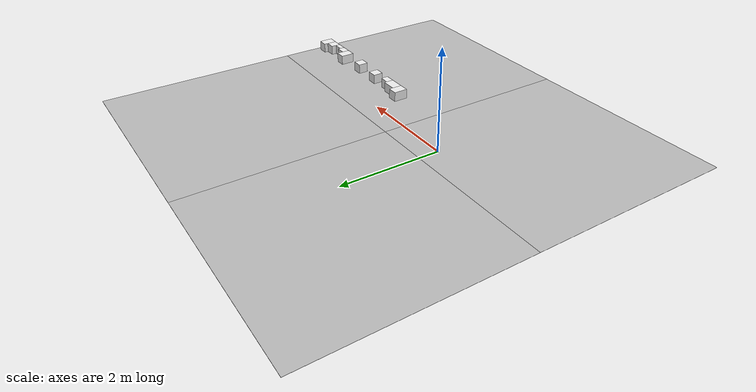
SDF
<sdf version="1.6">
 <world name="default">
  <model name="Tile/0-0">
   <static>1</static>
   <link name="link">
    <collision name="collision">
     <geometry><plane><normal>0 0 1</normal><size>4.096 4.096</size></plane></geometry>
     <surface><friction><ode><mu>100</mu><mu2>50</mu2></ode></friction></surface>
    </collision>
    <visual name="visual">
     <cast_shadows>0</cast_shadows>
     <geometry><plane><normal>0 0 1</normal><size>4.096 4.096</size></plane></geometry>
     <material>
      <script>
       <uri>file://materials/scripts</uri>
       <uri>file://materials/textures</uri>
       <name>Tile/aa44efc093d15b0d016b671cb8dad8b9b5925cd42bc6b331ef31decf4ba6863e</name>
      </script>
     </material>
    </visual>
   </link>
   <pose>-0.952 -1.6520000000000001 0 0 -0 0</pose>
  </model>
  <model name="Tile/0-1">
   <static>1</static>
   <link name="link">
    <collision name="collision">
     <geometry><plane><normal>0 0 1</normal><size>4.096 4.096</size></plane></geometry>
     <surface><friction><ode><mu>100</mu><mu2>50</mu2></ode></friction></surface>
    </collision>
    <visual name="visual">
     <cast_shadows>0</cast_shadows>
     <geometry><plane><normal>0 0 1</normal><size>4.096 4.096</size></plane></geometry>
     <material>
      <script>
       <uri>file://materials/scripts</uri>
       <uri>file://materials/textures</uri>
       <name>Tile/6681b896b1587d54cb69aadeb5fb7247b4d6d500490292053e67105ac88ca889</name>
      </script>
     </material>
    </visual>
   </link>
   <pose>-0.952 2.444 0 0 -0 0</pose>
  </model>
  <model name="Tile/1-0">
   <static>1</static>
   <link name="link">
    <collision name="collision">
     <geometry><plane><normal>0 0 1</normal><size>4.096 4.096</size></plane></geometry>
     <surface><friction><ode><mu>100</mu><mu2>50</mu2></ode></friction></surface>
    </collision>
    <visual name="visual">
     <cast_shadows>0</cast_shadows>
     <geometry><plane><normal>0 0 1</normal><size>4.096 4.096</size></plane></geometry>
     <material>
      <script>
       <uri>file://materials/scripts</uri>
       <uri>file://materials/textures</uri>
       <name>Tile/2fa30ca078c53d74b55d10a714a7351fd03c29bf89665499fe5483cd77895a91</name>
      </script>
     </material>
    </visual>
   </link>
   <pose>3.144 -1.6520000000000001 0 0 -0 0</pose>
  </model>
  <model name="Tile/1-1">
   <static>1</static>
   <link name="link">
    <collision name="collision">
     <geometry><plane><normal>0 0 1</normal><size>4.096 4.096</size></plane></geometry>
     <surface><friction><ode><mu>100</mu><mu2>50</mu2></ode></friction></surface>
    </collision>
    <visual name="visual">
     <cast_shadows>0</cast_shadows>
     <geometry><plane><normal>0 0 1</normal><size>4.096 4.096</size></plane></geometry>
     <material>
      <script>
       <uri>file://materials/scripts</uri>
       <uri>file://materials/textures</uri>
       <name>Tile/13957a6de1f2afce18d7f1f64dacc2f21295e26ccf498256b0e1a51002cd5706</name>
      </script>
     </material>
    </visual>
   </link>
   <pose>3.144 2.444 0 0 -0 0</pose>
  </model>
  <model name="Obstacle/-5/0">
   <pose>2.1 -0.5599999999999999 0.1 0 0 -0.0</pose>
   <link name="link">
    <inertial>
     <mass>10</mass>
     <inertia>
      <ixx>0.166667</ixx>
      <ixy>0</ixy>
      <ixz>0</ixz>
      <iyy>0.166667</iyy>
      <iyz>0</iyz>
      <izz>0.166667</izz>
     </inertia>
    </inertial>
    <collision name="collision"><geometry><box><size>0.2 0.28 0.2</size></box></geometry></collision>
    <visual name="visual">
     <geometry><box><size>0.2 0.28 0.2</size></box></geometry>
     <material>
      <script><name>Gazebo/White</name><uri>file://media/materials/scripts/gazebo.material</uri></script>
     </material>
    </visual>
   </link>
  </model>
  <model name="Obstacle/-9/0">
   <pose>2.35 -0.6 0.1 0 0 -0.0</pose>
   <link name="link">
    <inertial>
     <mass>10</mass>
     <inertia>
      <ixx>0.166667</ixx>
      <ixy>0</ixy>
      <ixz>0</ixz>
      <iyy>0.166667</iyy>
      <iyz>0</iyz>
      <izz>0.166667</izz>
     </inertia>
    </inertial>
    <collision name="collision"><geometry><box><size>0.3 0.2 0.2</size></box></geometry></collision>
    <visual name="visual">
     <geometry><box><size>0.3 0.2 0.2</size></box></geometry>
     <material>
      <script><name>Gazebo/White</name><uri>file://media/materials/scripts/gazebo.material</uri></script>
     </material>
    </visual>
   </link>
  </model>
  <model name="Obstacle/-13/0">
   <pose>2.6 -0.625 0.1 0 0 -0.0</pose>
   <link name="link">
    <inertial>
     <mass>10</mass>
     <inertia>
      <ixx>0.166667</ixx>
      <ixy>0</ixy>
      <ixz>0</ixz>
      <iyy>0.166667</iyy>
      <iyz>0</iyz>
      <izz>0.166667</izz>
     </inertia>
    </inertial>
    <collision name="collision"><geometry><box><size>0.2 0.15 0.2</size></box></geometry></collision>
    <visual name="visual">
     <geometry><box><size>0.2 0.15 0.2</size></box></geometry>
     <material>
      <script><name>Gazebo/White</name><uri>file://media/materials/scripts/gazebo.material</uri></script>
     </material>
    </visual>
   </link>
  </model>
  <model name="Obstacle/-20/0">
   <pose>3.0000000000000004 -0.6 0.1 0 0 -0.0</pose>
   <link name="link">
    <inertial>
     <mass>10</mass>
     <inertia>
      <ixx>0.166667</ixx>
      <ixy>0</ixy>
      <ixz>0</ixz>
      <iyy>0.166667</iyy>
      <iyz>0</iyz>
      <izz>0.166667</izz>
     </inertia>
    </inertial>
    <collision name="collision"><geometry><box><size>0.2 0.2 0.2</size></box></geometry></collision>
    <visual name="visual">
     <geometry><box><size>0.2 0.2 0.2</size></box></geometry>
     <material>
      <script><name>Gazebo/White</name><uri>file://media/materials/scripts/gazebo.material</uri></script>
     </material>
    </visual>
   </link>
  </model>
  <model name="Obstacle/-27/0">
   <pose>3.6000000000000005 -0.6 0.1 0 0 -0.0</pose>
   <link name="link">
    <inertial>
     <mass>10</mass>
     <inertia>
      <ixx>0.166667</ixx>
      <ixy>0</ixy>
      <ixz>0</ixz>
      <iyy>0.166667</iyy>
      <iyz>0</iyz>
      <izz>0.166667</izz>
     </inertia>
    </inertial>
    <collision name="collision"><geometry><box><size>0.2 0.2 0.2</size></box></geometry></collision>
    <visual name="visual">
     <geometry><box><size>0.2 0.2 0.2</size></box></geometry>
     <material>
      <script><name>Gazebo/White</name><uri>file://media/materials/scripts/gazebo.material</uri></script>
     </material>
    </visual>
   </link>
  </model>
  <model name="Obstacle/-34/0">
   <pose>4.2 -0.5599999999999999 0.1 0 0 -0.0</pose>
   <link name="link">
    <inertial>
     <mass>10</mass>
     <inertia>
      <ixx>0.166667</ixx>
      <ixy>0</ixy>
      <ixz>0</ixz>
      <iyy>0.166667</iyy>
      <iyz>0</iyz>
      <izz>0.166667</izz>
     </inertia>
    </inertial>
    <collision name="collision"><geometry><box><size>0.2 0.28 0.2</size></box></geometry></collision>
    <visual name="visual">
     <geometry><box><size>0.2 0.28 0.2</size></box></geometry>
     <material>
      <script><name>Gazebo/White</name><uri>file://media/materials/scripts/gazebo.material</uri></script>
     </material>
    </visual>
   </link>
  </model>
  <model name="Obstacle/-38/0">
   <pose>4.4 -0.625 0.1 0 0 -0.0</pose>
   <link name="link">
    <inertial>
     <mass>10</mass>
     <inertia>
      <ixx>0.166667</ixx>
      <ixy>0</ixy>
      <ixz>0</ixz>
      <iyy>0.166667</iyy>
      <iyz>0</iyz>
      <izz>0.166667</izz>
     </inertia>
    </inertial>
    <collision name="collision"><geometry><box><size>0.2 0.15 0.2</size></box></geometry></collision>
    <visual name="visual">
     <geometry><box><size>0.2 0.15 0.2</size></box></geometry>
     <material>
      <script><name>Gazebo/White</name><uri>file://media/materials/scripts/gazebo.material</uri></script>
     </material>
    </visual>
   </link>
  </model>
  <model name="Obstacle/-42/0">
   <pose>4.6000000000000005 -0.6499999999999999 0.1 0 0 -0.0</pose>
   <link name="link">
    <inertial>
     <mass>10</mass>
     <inertia>
      <ixx>0.166667</ixx>
      <ixy>0</ixy>
      <ixz>0</ixz>
      <iyy>0.166667</iyy>
      <iyz>0</iyz>
      <izz>0.166667</izz>
     </inertia>
    </inertial>
    <collision name="collision"><geometry><box><size>0.2 0.1 0.2</size></box></geometry></collision>
    <visual name="visual">
     <geometry><box><size>0.2 0.1 0.2</size></box></geometry>
     <material>
      <script><name>Gazebo/White</name><uri>file://media/materials/scripts/gazebo.material</uri></script>
     </material>
    </visual>
   </link>
  </model>
  <model name="Obstacle/-46/0">
   <pose>4.800000000000001 -0.6 0.1 0 0 -0.0</pose>
   <link name="link">
    <inertial>
     <mass>10</mass>
     <inertia>
      <ixx>0.166667</ixx>
      <ixy>0</ixy>
      <ixz>0</ixz>
      <iyy>0.166667</iyy>
      <iyz>0</iyz>
      <izz>0.166667</izz>
     </inertia>
    </inertial>
    <collision name="collision"><geometry><box><size>0.2 0.2 0.2</size></box></geometry></collision>
    <visual name="visual">
     <geometry><box><size>0.2 0.2 0.2</size></box></geometry>
     <material>
      <script><name>Gazebo/White</name><uri>file://media/materials/scripts/gazebo.material</uri></script>
     </material>
    </visual>
   </link>
  </model>
  <model name="Obstacle/-50/0">
   <pose>5.000000000000001 -0.5599999999999999 0.1 0 0 -0.0</pose>
   <link name="link">
    <inertial>
     <mass>10</mass>
     <inertia>
      <ixx>0.166667</ixx>
      <ixy>0</ixy>
      <ixz>0</ixz>
      <iyy>0.166667</iyy>
      <iyz>0</iyz>
      <izz>0.166667</izz>
     </inertia>
    </inertial>
    <collision name="collision"><geometry><box><size>0.2 0.28 0.2</size></box></geometry></collision>
    <visual name="visual">
     <geometry><box><size>0.2 0.28 0.2</size></box></geometry>
     <material>
      <script><name>Gazebo/White</name><uri>file://media/materials/scripts/gazebo.material</uri></script>
     </material>
    </visual>
   </link>
  </model>
 </world>
</sdf>
